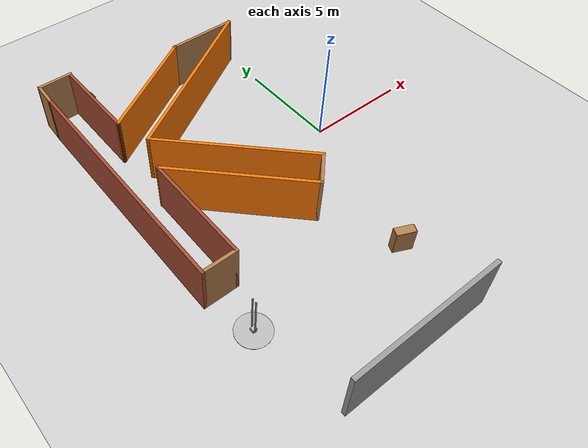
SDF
<sdf version="1.6">
 <world name="default">
  <model name="ground_plane">
   <static>1</static>
   <link name="link">
    <collision name="collision">
     <geometry><plane><normal>0 0 1</normal><size>100 100</size></plane></geometry>
     <surface>
      <contact><collide_bitmask>65535</collide_bitmask></contact>
      <friction><ode><mu>100</mu><mu2>50</mu2></ode></friction>
     </surface>
    </collision>
    <visual name="visual">
     <cast_shadows>0</cast_shadows>
     <geometry><plane><normal>0 0 1</normal><size>100 100</size></plane></geometry>
     <material>
      <script><uri>file://media/materials/scripts/gazebo.material</uri><name>Gazebo/Grey</name></script>
     </material>
    </visual>
   </link>
  </model>
  <model name="k_map">
   <pose>-5.13887 2.04621 0 0 -0 0</pose>
   <link name="Wall_0">
    <collision name="Wall_0_Collision">
     <geometry><box><size>12 0.15 2.5</size></box></geometry>
     <pose>0 0 1.25 0 -0 0</pose>
    </collision>
    <visual name="Wall_0_Visual">
     <pose>0 0 1.25 0 -0 0</pose>
     <geometry><box><size>12 0.15 2.5</size></box></geometry>
     <material>
      <script><uri>file://media/materials/scripts/gazebo.material</uri><name>Gazebo/Bricks</name></script>
      <ambient>1 1 1 1</ambient>
     </material>
     <meta><layer>0</layer></meta>
    </visual>
    <pose>-5.05323 -0.546651 0 0 0 -1.5708</pose>
   </link>
   <link name="Wall_1">
    <collision name="Wall_1_Collision">
     <geometry><box><size>1.75 0.15 2.5</size></box></geometry>
     <pose>0 0 1.25 0 -0 0</pose>
    </collision>
    <visual name="Wall_1_Visual">
     <pose>0 0 1.25 0 -0 0</pose>
     <geometry><box><size>1.75 0.15 2.5</size></box></geometry>
     <material>
      <script><uri>file://media/materials/scripts/gazebo.material</uri><name>Gazebo/Wood</name></script>
      <ambient>1 1 1 1</ambient>
     </material>
     <meta><layer>0</layer></meta>
    </visual>
    <pose>-4.25323 -6.47165 0 0 -0 0</pose>
   </link>
   <link name="Wall_10">
    <collision name="Wall_10_Collision">
     <geometry><box><size>1.75 0.15 2.5</size></box></geometry>
     <pose>0 0 1.25 0 -0 0</pose>
    </collision>
    <visual name="Wall_10_Visual">
     <pose>0 0 1.25 0 -0 0</pose>
     <geometry><box><size>1.75 0.15 2.5</size></box></geometry>
     <material>
      <script><uri>file://media/materials/scripts/gazebo.material</uri><name>Gazebo/Wood</name></script>
      <ambient>1 1 1 1</ambient>
     </material>
     <meta><layer>0</layer></meta>
    </visual>
    <pose>-4.21074 6.46879 0 0 -0 3.14159</pose>
   </link>
   <link name="Wall_14">
    <collision name="Wall_14_Collision">
     <geometry><box><size>1.24127 0.15 2.5</size></box></geometry>
     <pose>0 0 1.25 0 -0 0</pose>
    </collision>
    <visual name="Wall_14_Visual">
     <pose>0 0 1.25 0 -0 0</pose>
     <geometry><box><size>1.24127 0.15 2.5</size></box></geometry>
     <material>
      <script><uri>file://media/materials/scripts/gazebo.material</uri><name>Gazebo/Wood</name></script>
      <ambient>1 1 1 1</ambient>
     </material>
     <meta><layer>0</layer></meta>
    </visual>
    <pose>-5.03198 5.92357 0 0 -0 1.53185</pose>
   </link>
   <link name="Wall_2">
    <collision name="Wall_2_Collision">
     <geometry><box><size>5.5 0.15 2.5</size></box></geometry>
     <pose>0 0 1.25 0 -0 0</pose>
    </collision>
    <visual name="Wall_2_Visual">
     <pose>0 0 1.25 0 -0 0</pose>
     <geometry><box><size>5.5 0.15 2.5</size></box></geometry>
     <material>
      <script><uri>file://media/materials/scripts/gazebo.material</uri><name>Gazebo/Bricks</name></script>
      <ambient>1 1 1 1</ambient>
     </material>
     <meta><layer>0</layer></meta>
    </visual>
    <pose>-3.45323 -3.79665 0 0 -0 1.5708</pose>
   </link>
   <link name="Wall_3">
    <collision name="Wall_3_Collision">
     <geometry><box><size>7 0.15 2.5</size></box></geometry>
     <pose>0 0 1.25 0 -0 0</pose>
    </collision>
    <visual name="Wall_3_Visual">
     <pose>0 0 1.25 0 -0 0</pose>
     <geometry><box><size>7 0.15 2.5</size></box></geometry>
     <material>
      <script><uri>file://media/materials/scripts/gazebo.material</uri><name>Gazebo/Grey</name></script>
      <ambient>0.996078 0.47451 0.0196078 1</ambient>
     </material>
     <meta><layer>0</layer></meta>
    </visual>
    <pose>-1.03139 -3.54349 0 0 0 -0.785398</pose>
   </link>
   <link name="Wall_4">
    <collision name="Wall_4_Collision">
     <geometry><box><size>1.75 0.15 2.5</size></box></geometry>
     <pose>0 0 1.25 0 -0 0</pose>
    </collision>
    <visual name="Wall_4_Visual">
     <pose>0 0 1.25 0 -0 0</pose>
     <geometry><box><size>1.75 0.15 2.5</size></box></geometry>
     <material>
      <script><uri>file://media/materials/scripts/gazebo.material</uri><name>Gazebo/Wood</name></script>
      <ambient>1 1 1 1</ambient>
     </material>
     <meta><layer>0</layer></meta>
    </visual>
    <pose>1.95614 -5.39965 0 0 -0 0.785398</pose>
   </link>
   <link name="Wall_5">
    <collision name="Wall_5_Collision">
     <geometry><box><size>7.75 0.15 2.5</size></box></geometry>
     <pose>0 0 1.25 0 -0 0</pose>
    </collision>
    <visual name="Wall_5_Visual">
     <pose>0 0 1.25 0 -0 0</pose>
     <geometry><box><size>7.75 0.15 2.5</size></box></geometry>
     <material>
      <script><uri>file://media/materials/scripts/gazebo.material</uri><name>Gazebo/Grey</name></script>
      <ambient>0.996078 0.47451 0.0196078 1</ambient>
     </material>
     <meta><layer>0</layer></meta>
    </visual>
    <pose>-0.165184 -2.14696 0 0 -0 2.35619</pose>
   </link>
   <link name="Wall_6">
    <collision name="Wall_6_Collision">
     <geometry><box><size>9.25 0.15 2.5</size></box></geometry>
     <pose>0 0 1.25 0 -0 0</pose>
    </collision>
    <visual name="Wall_6_Visual">
     <pose>0 0 1.25 0 -0 0</pose>
     <geometry><box><size>9.25 0.15 2.5</size></box></geometry>
     <material>
      <script><uri>file://media/materials/scripts/gazebo.material</uri><name>Gazebo/Grey</name></script>
      <ambient>0.996078 0.47451 0.0196078 1</ambient>
     </material>
     <meta><layer>0</layer></meta>
    </visual>
    <pose>1.08823 2.81505 0 0 -0 0.523599</pose>
   </link>
   <link name="Wall_7">
    <collision name="Wall_7_Collision">
     <geometry><box><size>3.5 0.15 2.5</size></box></geometry>
     <pose>0 0 1.25 0 -0 0</pose>
    </collision>
    <visual name="Wall_7_Visual">
     <pose>0 0 1.25 0 -0 0</pose>
     <geometry><box><size>3.5 0.15 2.5</size></box></geometry>
     <material>
      <script><uri>file://media/materials/scripts/gazebo.material</uri><name>Gazebo/Wood</name></script>
      <ambient>1 1 1 1</ambient>
     </material>
     <meta><layer>0</layer></meta>
    </visual>
    <pose>3.35364 5.09005 0 0 -0 3.14159</pose>
   </link>
   <link name="Wall_8">
    <collision name="Wall_8_Collision">
     <geometry><box><size>6 0.15 2.5</size></box></geometry>
     <pose>0 0 1.25 0 -0 0</pose>
    </collision>
    <visual name="Wall_8_Visual">
     <pose>0 0 1.25 0 -0 0</pose>
     <geometry><box><size>6 0.15 2.5</size></box></geometry>
     <material>
      <script><uri>file://media/materials/scripts/gazebo.material</uri><name>Gazebo/Grey</name></script>
      <ambient>0.996078 0.47451 0.0196078 1</ambient>
     </material>
     <meta><layer>0</layer></meta>
    </visual>
    <pose>-0.854482 3.62755 0 0 0 -2.61799</pose>
   </link>
   <link name="Wall_9">
    <collision name="Wall_9_Collision">
     <geometry><box><size>4.45399 0.15 2.5</size></box></geometry>
     <pose>0 0 1.25 0 -0 0</pose>
    </collision>
    <visual name="Wall_9_Visual">
     <pose>0 0 1.25 0 -0 0</pose>
     <geometry><box><size>4.45399 0.15 2.5</size></box></geometry>
     <material>
      <script><uri>file://media/materials/scripts/gazebo.material</uri><name>Gazebo/Bricks</name></script>
      <ambient>1 1 1 1</ambient>
     </material>
     <meta><layer>0</layer></meta>
    </visual>
    <pose>-3.41074 4.31692 0 0 -0 1.58154</pose>
   </link>
   <static>1</static>
  </model>
  <model name="bookshelf">
   <static>1</static>
   <link name="link">
    <inertial><mass>1</mass></inertial>
    <collision name="back">
     <pose>0 0.005 0.6 0 -0 0</pose>
     <geometry><box><size>0.9 0.01 1.2</size></box></geometry>
    </collision>
    <visual name="visual1">
     <pose>0 0.005 0.6 0 -0 0</pose>
     <geometry><box><size>0.9 0.01 1.2</size></box></geometry>
     <material>
      <script><uri>file://media/materials/scripts/gazebo.material</uri><name>Gazebo/Wood</name></script>
     </material>
    </visual>
    <collision name="left_side">
     <pose>0.45 -0.195 0.6 0 -0 0</pose>
     <geometry><box><size>0.02 0.4 1.2</size></box></geometry>
    </collision>
    <visual name="visual2">
     <pose>0.45 -0.195 0.6 0 -0 0</pose>
     <geometry><box><size>0.02 0.4 1.2</size></box></geometry>
     <material>
      <script><uri>file://media/materials/scripts/gazebo.material</uri><name>Gazebo/Wood</name></script>
     </material>
    </visual>
    <collision name="right_side">
     <pose>-0.45 -0.195 0.6 0 -0 0</pose>
     <geometry><box><size>0.02 0.4 1.2</size></box></geometry>
    </collision>
    <visual name="visual3">
     <pose>-0.45 -0.195 0.6 0 -0 0</pose>
     <geometry><box><size>0.02 0.4 1.2</size></box></geometry>
     <material>
      <script><uri>file://media/materials/scripts/gazebo.material</uri><name>Gazebo/Wood</name></script>
     </material>
    </visual>
    <collision name="bottom">
     <pose>0 -0.195 0.03 0 -0 0</pose>
     <geometry><box><size>0.88 0.4 0.06</size></box></geometry>
    </collision>
    <visual name="visual4">
     <pose>0 -0.195 0.03 0 -0 0</pose>
     <geometry><box><size>0.88 0.4 0.06</size></box></geometry>
     <material>
      <script><uri>file://media/materials/scripts/gazebo.material</uri><name>Gazebo/Wood</name></script>
     </material>
    </visual>
    <collision name="top">
     <pose>0 -0.195 1.19 0 -0 0</pose>
     <geometry><box><size>0.88 0.4 0.02</size></box></geometry>
    </collision>
    <visual name="visual5">
     <pose>0 -0.195 1.19 0 -0 0</pose>
     <geometry><box><size>0.88 0.4 0.02</size></box></geometry>
     <material>
      <script><uri>file://media/materials/scripts/gazebo.material</uri><name>Gazebo/Wood</name></script>
     </material>
    </visual>
    <collision name="low_shelf">
     <pose>0 -0.195 0.43 0 -0 0</pose>
     <geometry><box><size>0.88 0.4 0.02</size></box></geometry>
    </collision>
    <visual name="visual6">
     <pose>0 -0.195 0.43 0 -0 0</pose>
     <geometry><box><size>0.88 0.4 0.02</size></box></geometry>
     <material>
      <script><uri>file://media/materials/scripts/gazebo.material</uri><name>Gazebo/Wood</name></script>
     </material>
    </visual>
    <collision name="high_shelf">
     <pose>0 -0.195 0.8 0 -0 0</pose>
     <geometry><box><size>0.88 0.4 0.02</size></box></geometry>
    </collision>
    <visual name="visual7">
     <pose>0 -0.195 0.8 0 -0 0</pose>
     <geometry><box><size>0.88 0.4 0.02</size></box></geometry>
     <material>
      <script><uri>file://media/materials/scripts/gazebo.material</uri><name>Gazebo/Wood</name></script>
     </material>
    </visual>
   </link>
   <pose>-2.05496 -7.35956 0 0 -0 2.72202</pose>
  </model>
  <model name="grey_wall">
   <static>1</static>
   <link name="link">
    <pose>0 0 1.4 0 -0 0</pose>
    <collision name="collision"><geometry><box><size>7.5 0.2 2.8</size></box></geometry></collision>
    <visual name="visual">
     <cast_shadows>0</cast_shadows>
     <geometry><box><size>7.5 0.2 2.8</size></box></geometry>
     <material>
      <script>
       <uri>model://grey_wall/materials/scripts</uri>
       <uri>model://grey_wall/materials/textures</uri>
       <name>vrc/grey_wall</name>
      </script>
     </material>
    </visual>
   </link>
   <pose>-5.14997 -10.9358 0 0 -0 0</pose>
  </model>
  <model name="cabinet">
   <static>1</static>
   <link name="cabinet_bottom_plate">
    <inertial>
     <pose>0 0 -1 0 -0 0</pose>
     <inertia><ixx>2.05</ixx><ixy>0</ixy><ixz>0</ixz><iyy>2.05</iyy><iyz>0</iyz><izz>2.05</izz></inertia>
     <mass>25</mass>
    </inertial>
    <collision name="cabinet_bottom_plate_geom">
     <pose>0 0 0.01 0 -0 0</pose>
     <geometry><box><size>0.45 0.45 0.02</size></box></geometry>
    </collision>
    <visual name="cabinet_bottom_plate_geom_visual">
     <pose>0 0 0.01 0 -0 0</pose>
     <geometry><box><size>0.45 0.45 0.02</size></box></geometry>
     <material>
      <script><uri>file://media/materials/scripts/gazebo.material</uri><name>Gazebo/Wood</name></script>
     </material>
    </visual>
    <collision name="cabinet_bottom_plate_geom_cabinet_back_plate">
     <pose>0.235 0 0.51 0 -0 0</pose>
     <geometry><box><size>0.02 0.45 1.02</size></box></geometry>
    </collision>
    <visual name="cabinet_bottom_plate_geom_cabinet_back_plate_visual">
     <pose>0.235 0 0.51 0 -0 0</pose>
     <geometry><box><size>0.02 0.45 1.02</size></box></geometry>
     <material>
      <script><uri>file://media/materials/scripts/gazebo.material</uri><name>Gazebo/Wood</name></script>
     </material>
    </visual>
    <collision name="cabinet_bottom_plate_geom_cabinet_left_plate">
     <pose>0 0.235 0.51 0 -0 0</pose>
     <geometry><box><size>0.45 0.02 1.02</size></box></geometry>
    </collision>
    <visual name="cabinet_bottom_plate_geom_cabinet_left_plate_visual">
     <pose>0 0.235 0.51 0 -0 0</pose>
     <geometry><box><size>0.45 0.02 1.02</size></box></geometry>
     <material>
      <script><uri>file://media/materials/scripts/gazebo.material</uri><name>Gazebo/Wood</name></script>
     </material>
    </visual>
    <collision name="cabinet_bottom_plate_geom_cabinet_middle_plate">
     <pose>0 0 0.51 0 -0 0</pose>
     <geometry><box><size>0.45 0.45 0.02</size></box></geometry>
    </collision>
    <visual name="cabinet_bottom_plate_geom_cabinet_middle_plate_visual">
     <pose>0 0 0.51 0 -0 0</pose>
     <geometry><box><size>0.45 0.45 0.02</size></box></geometry>
     <material>
      <script><uri>file://media/materials/scripts/gazebo.material</uri><name>Gazebo/Wood</name></script>
     </material>
    </visual>
    <collision name="cabinet_bottom_plate_geom_cabinet_right_plate">
     <pose>0 -0.235 0.51 0 -0 0</pose>
     <geometry><box><size>0.45 0.02 1.02</size></box></geometry>
    </collision>
    <visual name="cabinet_bottom_plate_geom_cabinet_right_plate_visual">
     <pose>0 -0.235 0.51 0 -0 0</pose>
     <geometry><box><size>0.45 0.02 1.02</size></box></geometry>
     <material>
      <script><uri>file://media/materials/scripts/gazebo.material</uri><name>Gazebo/Wood</name></script>
     </material>
    </visual>
    <collision name="cabinet_bottom_plate_geom_cabinet_top_plate">
     <pose>0 0 1.01 0 -0 0</pose>
     <geometry><box><size>0.45 0.45 0.02</size></box></geometry>
    </collision>
    <visual name="cabinet_bottom_plate_geom_cabinet_top_plate_visual">
     <pose>0 0 1.01 0 -0 0</pose>
     <geometry><box><size>0.45 0.45 0.02</size></box></geometry>
     <material>
      <script><uri>file://media/materials/scripts/gazebo.material</uri><name>Gazebo/Wood</name></script>
     </material>
    </visual>
   </link>
   <pose>-8.03108 8.13729 0 0 -0 0</pose>
  </model>
  <model name="mass_on_rails">
   <link name="base">
    <inertial>
     <mass>100</mass>
     <inertia><ixx>1</ixx><ixy>0</ixy><ixz>0</ixz><iyy>1</iyy><iyz>0</iyz><izz>1</izz></inertia>
    </inertial>
    <visual name="vis_base">
     <pose>0 0 0.01 0 -0 0</pose>
     <geometry><cylinder><radius>0.8</radius><length>0.01</length></cylinder></geometry>
    </visual>
    <collision name="col_base">
     <pose>0 0 0.01 0 -0 0</pose>
     <geometry><cylinder><radius>0.8</radius><length>0.01</length></cylinder></geometry>
    </collision>
    <visual name="vis_rail1">
     <pose>0 0.1 1.1 0 -0 0</pose>
     <geometry><box><size>0.05 0.05 2.2</size></box></geometry>
    </visual>
    <collision name="col_rail1">
     <pose>0 0.1 1.1 0 -0 0</pose>
     <geometry><box><size>0.05 0.05 2.2</size></box></geometry>
    </collision>
    <visual name="vis_rail2">
     <pose>0 -0.1 1.1 0 -0 0</pose>
     <geometry><box><size>0.05 0.05 2.2</size></box></geometry>
    </visual>
    <collision name="col_rail2">
     <pose>0 -0.1 1.1 0 -0 0</pose>
     <geometry><box><size>0.05 0.05 2.2</size></box></geometry>
    </collision>
   </link>
   <link name="mass">
    <inertial>
     <mass>0.1</mass>
     <pose>0 0 0.1 0 -0 0</pose>
     <inertia><ixx>0.00067</ixx><ixy>0</ixy><ixz>0</ixz><iyy>0.00067</iyy><iyz>0</iyz><izz>0.00067</izz></inertia>
    </inertial>
    <visual name="visual">
     <pose>0 0 0.1 0 -0 0</pose>
     <geometry><box><size>0.2 0.2 0.2</size></box></geometry>
    </visual>
    <collision name="collision">
     <pose>0 0 0.1 0 -0 0</pose>
     <geometry><box><size>0.2 0.2 0.2</size></box></geometry>
    </collision>
   </link>
   <joint name="joint" type="prismatic">
    <parent>base</parent>
    <child>mass</child>
    <axis>
     <dynamics>
      <damping>0.01</damping>
      <friction>0.01</friction>
      <spring_reference>0</spring_reference>
      <spring_stiffness>0</spring_stiffness>
     </dynamics>
     <xyz>0 0 1</xyz>
     <limit><lower>0</lower><upper>2</upper></limit>
     <use_parent_model_frame>0</use_parent_model_frame>
    </axis>
   </joint>
   <pose>-9.32501 -6.4204 -4e-06 4.4e-05 -1e-05 -1.3e-05</pose>
  </model>
  <model name="unit_box_0">
   <pose>-0.559491 7.91208 0.499995 0 1e-05 0.000904</pose>
   <link name="link">
    <inertial>
     <mass>1</mass>
     <inertia>
      <ixx>0.166667</ixx>
      <ixy>0</ixy>
      <ixz>0</ixz>
      <iyy>0.166667</iyy>
      <iyz>0</iyz>
      <izz>0.166667</izz>
     </inertia>
    </inertial>
    <collision name="collision"><geometry><box><size>1 1.26601 1</size></box></geometry></collision>
    <visual name="visual">
     <geometry><box><size>1 1.26601 1</size></box></geometry>
     <material>
      <script><name>Gazebo/Grey</name><uri>file://media/materials/scripts/gazebo.material</uri></script>
     </material>
    </visual>
   </link>
  </model>
 </world>
</sdf>
